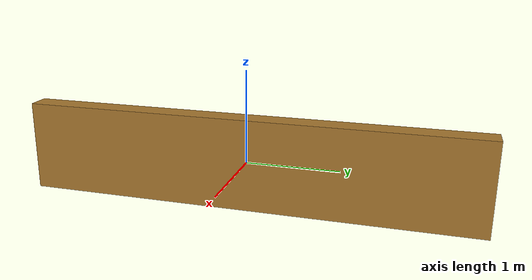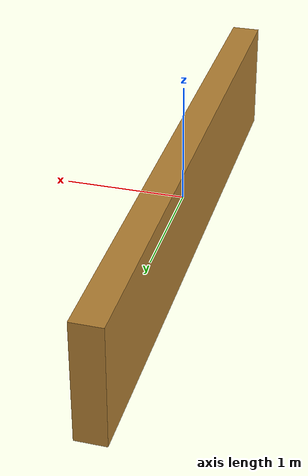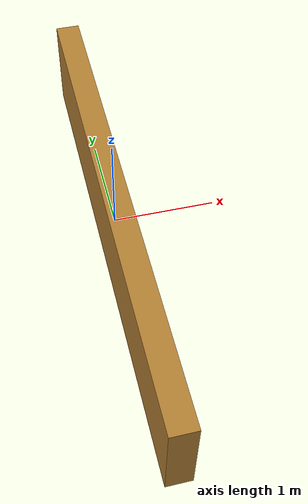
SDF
<?xml version="1.0" ?>
<sdf version="1.7">
  <model name="narrow_wall">
    <static>true</static>
    <link name="link">
      <collision name="collision">
        <geometry>
          <box><size>0.25 5.0 1.0</size></box>
        </geometry>
        <surface>
          <friction><ode><mu>100</mu><mu2>50</mu2></ode></friction>
        </surface>
      </collision>
      <visual name="visual">
        <geometry>
          <box><size>0.25 5.0 1.0</size></box>
        </geometry>
        <material>
          <ambient>0.7 0.5 0.2 1</ambient>
          <diffuse>0.7 0.5 0.2 1</diffuse>
          <specular>0.01 0.01 0.01 1</specular>
        </material>
      </visual>
    </link>
  </model>
</sdf>
